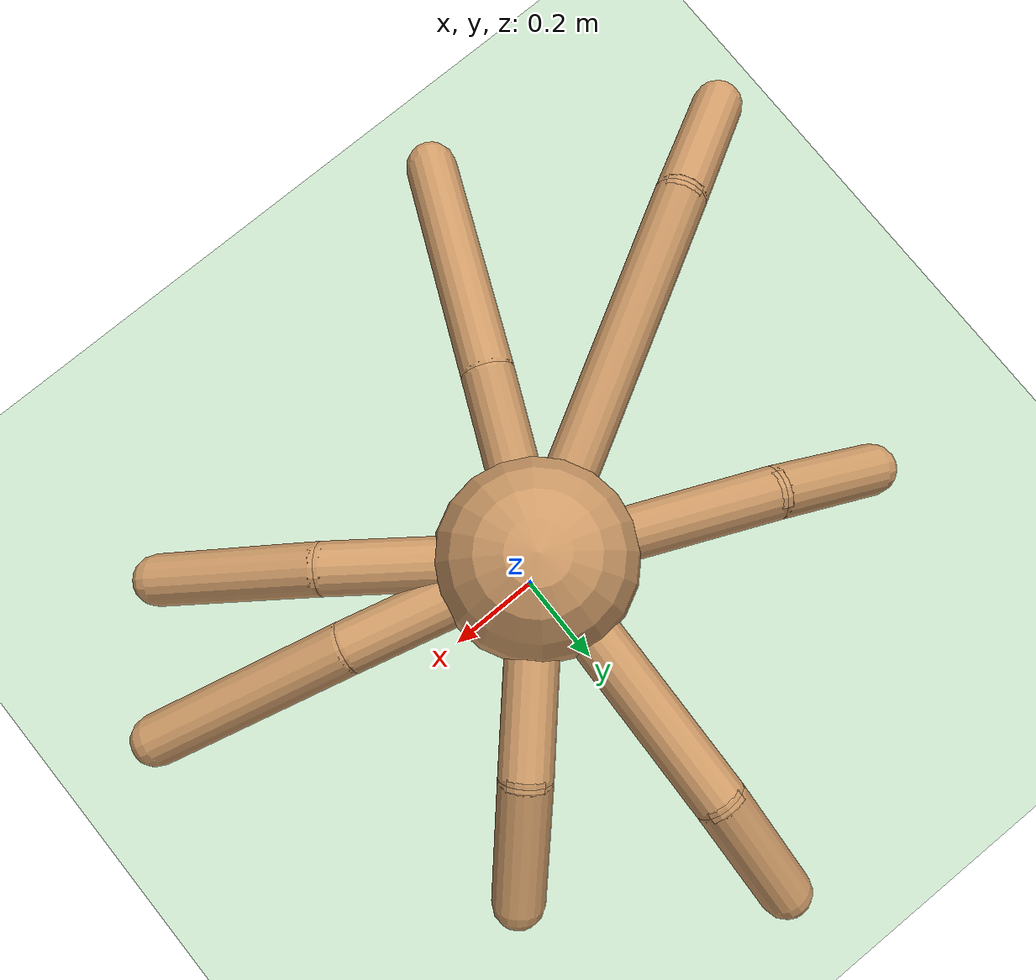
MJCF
<mujoco model="mutant_ant">
  <compiler angle="degree" coordinate="local" inertiafromgeom="true"/>
  <option integrator="RK4" timestep="0.01"/>
  <default>
    <joint armature="1" damping="1" limited="true"/>
    <geom conaffinity="1" condim="3" density="5.0" friction="1 0.5 0.5" margin="0.01" rgba="0.8 0.6 0.4 1"/>
  </default>
  <asset>
    <texture builtin="checker" height="512" name="texplane" rgb1=".2 .3 .4" rgb2=".1 0.15 0.2" type="2d" width="512"/>
    <material name="MatPlane" reflectance="0.5" shininess="1" specular="1" texrepeat="60 60" texture="texplane"/>
  </asset>
  <worldbody>
    <light cutoff="100" diffuse="1 1 1" dir="-0 0 -1.3" directional="true" exponent="1" pos="0 0 1.3" specular=".1 .1 .1"/>
    <geom conaffinity="1" condim="3" material="MatPlane" name="floor" pos="0 0 0" rgba="0.8 0.9 0.8 1" size="40 40 40" type="plane"/>
    <body name="torso" pos="0 0 0.880">
      <camera name="track" mode="trackcom" pos="0 -3 2.0" euler="60 0 0"/>
      <freejoint name="root"/>
      <geom name="torso_geom" pos="0 0 0" size="0.15" type="sphere"/>
      <body name="leg_0" pos="0 0 0" euler="0 0 -14.166">
        <geom fromto="0.0 0.0 0.0 0.1 0.0 0.0" name="aux_0_geom" size="0.04" type="capsule"/>
        <body name="leg_0_aux" pos="0.1 0.0 0">
          <joint axis="0 0 1" name="hip_0" pos="0.0 0.0 0.0" range="-30.226 30.310" type="hinge"/>
          <geom fromto="0.0 0.0 0.0 0.197 0.0 0.0" name="thigh_0_geom" size="0.04" type="capsule"/>
          <body pos="0.197 0.0 0" name="leg_0_ankle">
            <joint axis="0 1 0" name="ankle_0" pos="0.0 0.0 0.0" range="34.757 74.970" type="hinge"/>
            <geom fromto="0.0 0.0 0.0 0.323 0.0 -0.1" name="calf_0_geom" size="0.04" type="capsule"/>
          </body>
        </body>
      </body>
      <body name="leg_1" pos="0 0 0" euler="0 0 47.860">
        <geom fromto="0.0 0.0 0.0 0.1 0.0 0.0" name="aux_1_geom" size="0.04" type="capsule"/>
        <body name="leg_1_aux" pos="0.1 0.0 0">
          <joint axis="0 0 1" name="hip_1" pos="0.0 0.0 0.0" range="-25.651 33.128" type="hinge"/>
          <geom fromto="0.0 0.0 0.0 0.209 0.0 0.0" name="thigh_1_geom" size="0.04" type="capsule"/>
          <body pos="0.209 0.0 0" name="leg_1_ankle">
            <joint axis="0 1 0" name="ankle_1" pos="0.0 0.0 0.0" range="32.213 79.981" type="hinge"/>
            <geom fromto="0.0 0.0 0.0 0.187 0.0 -0.1" name="calf_1_geom" size="0.04" type="capsule"/>
          </body>
        </body>
      </body>
      <body name="leg_2" pos="0 0 0" euler="0 0 88.033">
        <geom fromto="0.0 0.0 0.0 0.1 0.0 0.0" name="aux_2_geom" size="0.04" type="capsule"/>
        <body name="leg_2_aux" pos="0.1 0.0 0">
          <joint axis="0 0 1" name="hip_2" pos="0.0 0.0 0.0" range="-32.377 43.689" type="hinge"/>
          <geom fromto="0.0 0.0 0.0 0.322 0.0 0.0" name="thigh_2_geom" size="0.04" type="capsule"/>
          <body pos="0.322 0.0 0" name="leg_2_ankle">
            <joint axis="0 1 0" name="ankle_2" pos="0.0 0.0 0.0" range="28.593 60.263" type="hinge"/>
            <geom fromto="0.0 0.0 0.0 0.180 0.0 -0.1" name="calf_2_geom" size="0.04" type="capsule"/>
          </body>
        </body>
      </body>
      <body name="leg_3" pos="0 0 0" euler="0 0 156.534">
        <geom fromto="0.0 0.0 0.0 0.1 0.0 0.0" name="aux_3_geom" size="0.04" type="capsule"/>
        <body name="leg_3_aux" pos="0.1 0.0 0">
          <joint axis="0 0 1" name="hip_3" pos="0.0 0.0 0.0" range="-26.899 31.617" type="hinge"/>
          <geom fromto="0.0 0.0 0.0 0.255 0.0 0.0" name="thigh_3_geom" size="0.04" type="capsule"/>
          <body pos="0.255 0.0 0" name="leg_3_ankle">
            <joint axis="0 1 0" name="ankle_3" pos="0.0 0.0 0.0" range="29.904 85.232" type="hinge"/>
            <geom fromto="0.0 0.0 0.0 0.175 0.0 -0.1" name="calf_3_geom" size="0.04" type="capsule"/>
          </body>
        </body>
      </body>
      <body name="leg_4" pos="0 0 0" euler="0 0 209.168">
        <geom fromto="0.0 0.0 0.0 0.1 0.0 0.0" name="aux_4_geom" size="0.04" type="capsule"/>
        <body name="leg_4_aux" pos="0.1 0.0 0">
          <joint axis="0 0 1" name="hip_4" pos="0.0 0.0 0.0" range="-26.899 31.617" type="hinge"/>
          <geom fromto="0.0 0.0 0.0 0.481 0.0 0.0" name="thigh_4_geom" size="0.04" type="capsule"/>
          <body pos="0.481 0.0 0" name="leg_4_ankle">
            <joint axis="0 1 0" name="ankle_4" pos="0.0 0.0 0.0" range="28.467 94.982" type="hinge"/>
            <geom fromto="0.0 0.0 0.0 0.199 0.0 -0.1" name="calf_4_geom" size="0.04" type="capsule"/>
          </body>
        </body>
      </body>
      <body name="leg_5" pos="0 0 0" euler="0 0 245.499">
        <geom fromto="0.0 0.0 0.0 0.1 0.0 0.0" name="aux_5_geom" size="0.04" type="capsule"/>
        <body name="leg_5_aux" pos="0.1 0.0 0">
          <joint axis="0 0 1" name="hip_5" pos="0.0 0.0 0.0" range="-24.169 20.900" type="hinge"/>
          <geom fromto="0.0 0.0 0.0 0.182 0.0 0.0" name="thigh_5_geom" size="0.04" type="capsule"/>
          <body pos="0.182 0.0 0" name="leg_5_ankle">
            <joint axis="0 1 0" name="ankle_5" pos="0.0 0.0 0.0" range="29.091 70.088" type="hinge"/>
            <geom fromto="0.0 0.0 0.0 0.362 0.0 -0.1" name="calf_5_geom" size="0.04" type="capsule"/>
          </body>
        </body>
      </body>
      <body name="leg_6" pos="0 0 0" euler="0 0 323.378">
        <geom fromto="0.0 0.0 0.0 0.1 0.0 0.0" name="aux_6_geom" size="0.04" type="capsule"/>
        <body name="leg_6_aux" pos="0.1 0.0 0">
          <joint axis="0 0 1" name="hip_6" pos="0.0 0.0 0.0" range="-31.634 33.828" type="hinge"/>
          <geom fromto="0.0 0.0 0.0 0.208 0.0 0.0" name="thigh_6_geom" size="0.04" type="capsule"/>
          <body pos="0.208 0.0 0" name="leg_6_ankle">
            <joint axis="0 1 0" name="ankle_6" pos="0.0 0.0 0.0" range="28.455 58.121" type="hinge"/>
            <geom fromto="0.0 0.0 0.0 0.260 0.0 -0.1" name="calf_6_geom" size="0.04" type="capsule"/>
          </body>
        </body>
      </body>
    </body>
  </worldbody>
  <actuator>
    <motor ctrllimited="true" ctrlrange="-1.0 1.0" joint="hip_0" gear="30"/>
    <motor ctrllimited="true" ctrlrange="-1.0 1.0" joint="ankle_0" gear="30"/>
    <motor ctrllimited="true" ctrlrange="-1.0 1.0" joint="hip_1" gear="30"/>
    <motor ctrllimited="true" ctrlrange="-1.0 1.0" joint="ankle_1" gear="30"/>
    <motor ctrllimited="true" ctrlrange="-1.0 1.0" joint="hip_2" gear="30"/>
    <motor ctrllimited="true" ctrlrange="-1.0 1.0" joint="ankle_2" gear="30"/>
    <motor ctrllimited="true" ctrlrange="-1.0 1.0" joint="hip_3" gear="30"/>
    <motor ctrllimited="true" ctrlrange="-1.0 1.0" joint="ankle_3" gear="30"/>
    <motor ctrllimited="true" ctrlrange="-1.0 1.0" joint="hip_4" gear="30"/>
    <motor ctrllimited="true" ctrlrange="-1.0 1.0" joint="ankle_4" gear="30"/>
    <motor ctrllimited="true" ctrlrange="-1.0 1.0" joint="hip_5" gear="30"/>
    <motor ctrllimited="true" ctrlrange="-1.0 1.0" joint="ankle_5" gear="30"/>
    <motor ctrllimited="true" ctrlrange="-1.0 1.0" joint="hip_6" gear="30"/>
    <motor ctrllimited="true" ctrlrange="-1.0 1.0" joint="ankle_6" gear="30"/>
  </actuator>
</mujoco>
